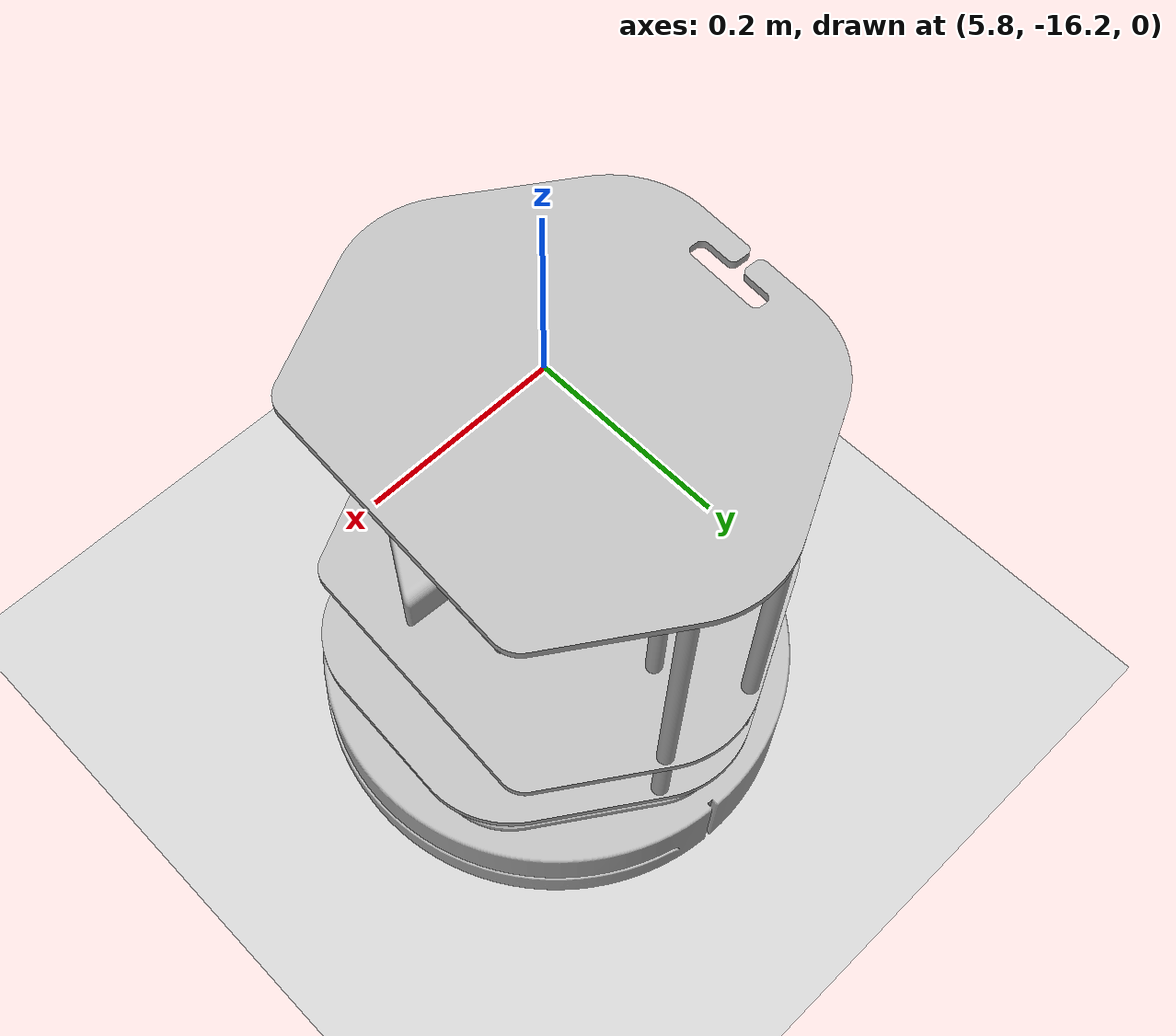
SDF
<sdf version="1.4">
 <world name="default">
  <model name="ground_plane">
   <static>1</static>
   <link name="link">
    <collision name="collision">
     <geometry><plane><normal>0 0 1</normal><size>100 100</size></plane></geometry>
     <surface><friction><ode><mu>100</mu><mu2>50</mu2></ode></friction></surface>
    </collision>
    <visual name="visual">
     <cast_shadows>0</cast_shadows>
     <geometry><plane><normal>0 0 1</normal><size>100 100</size></plane></geometry>
     <material>
      <script><uri>file://media/materials/scripts/gazebo.material</uri><name>Gazebo/Grey</name></script>
     </material>
    </visual>
    <velocity_decay><linear>0</linear><angular>0</angular></velocity_decay>
   </link>
  </model>
  <light name="sun" type="directional">
   <pose>0 0 10 0 -0 0</pose>
   <diffuse>0.8 0.8 0.8 1</diffuse>
   <specular>0.2 0.2 0.2 1</specular>
   <attenuation>
    <range>1000</range>
    <constant>0.9</constant>
    <linear>0.01</linear>
    <quadratic>0.001</quadratic>
   </attenuation>
   <direction>-0.5 0.1 -0.9</direction>
  </light>
  <physics type="ode">
   <max_step_size>0.01</max_step_size>
   <real_time_factor>1</real_time_factor>
   <real_time_update_rate>100</real_time_update_rate>
   <gravity>0 0 -9.8</gravity>
  </physics>
  <scene><ambient>0.4 0.4 0.4 1</ambient><background>0.7 0.7 0.7 1</background><shadows>1</shadows></scene>
  <model name="mobile_base">
   <link name="base_footprint">
    <inertial>
     <pose>0.00976386 2.50777e-05 0.0149209 0 -0 0</pose>
     <mass>2.47232</mass>
     <inertia>
      <ixx>0.0578467</ixx>
      <ixy>-2.89847e-06</ixy>
      <ixz>0.000126659</ixz>
      <iyy>0.0578569</iyy>
      <iyz>-9.59705e-07</iyz>
      <izz>0.0719205</izz>
     </inertia>
    </inertial>
    <collision name="base_footprint_collision_base_link">
     <pose>0 0 0.06969 0 -0 0</pose>
     <geometry><cylinder><length>0.10938</length><radius>0.178</radius></cylinder></geometry>
     <surface><friction><ode><mu>0.3</mu><mu2>0.3</mu2></ode></friction></surface>
    </collision>
    <collision name="base_footprint_collision_camera_link">
     <pose>-0.0156 0 0.2812 0 -0 0</pose>
     <geometry><box><size>0.07271 0.27794 0.073</size></box></geometry>
    </collision>
    <collision name="base_footprint_collision_caster_back_link">
     <pose>-0.135 0 0.0192 -1.5708 0 0</pose>
     <geometry><cylinder><length>0.0176</length><radius>0.017</radius></cylinder></geometry>
     <surface>
      <contact><ode><kp>1e+06</kp><kd>100</kd><max_vel>1</max_vel><min_depth>0.001</min_depth></ode></contact>
      <friction><ode><mu>0</mu><mu2>0</mu2></ode></friction>
     </surface>
    </collision>
    <collision name="base_footprint_collision_caster_front_link">
     <pose>0.115 0 0.0172 -1.5708 0 0</pose>
     <geometry><cylinder><length>0.0176</length><radius>0.017</radius></cylinder></geometry>
     <surface>
      <contact><ode><kp>1e+06</kp><kd>100</kd><max_vel>1</max_vel><min_depth>0.001</min_depth></ode></contact>
      <friction><ode><mu>0</mu><mu2>0</mu2></ode></friction>
     </surface>
    </collision>
    <collision name="base_footprint_collision_hokuyo_laser_link">
     <pose>0.048 0 0.2326 0 -0 0</pose>
     <geometry><box><size>0.1 0.1 0.1</size></box></geometry>
    </collision>
    <collision name="base_footprint_collision_plate_bottom_link">
     <pose>0 0 0.1408 0 -0 0</pose>
     <geometry><cylinder><length>0.006</length><radius>0.17</radius></cylinder></geometry>
    </collision>
    <collision name="base_footprint_collision_plate_middle_link">
     <pose>0 0 0.1976 0 -0 0</pose>
     <geometry><cylinder><length>0.006</length><radius>0.17</radius></cylinder></geometry>
    </collision>
    <collision name="base_footprint_collision_plate_top_link">
     <pose>0 0 0.4068 0 -0 0</pose>
     <geometry><cylinder><length>0.006</length><radius>0.17</radius></cylinder></geometry>
    </collision>
    <collision name="base_footprint_collision_pole_bottom_0_link">
     <pose>0.12 0.082 0.113 0 -0 0</pose>
     <geometry><cylinder><length>0.0492</length><radius>0.006</radius></cylinder></geometry>
    </collision>
    <collision name="base_footprint_collision_pole_bottom_1_link">
     <pose>0.055 0.12 0.113 0 -0 0</pose>
     <geometry><cylinder><length>0.0492</length><radius>0.006</radius></cylinder></geometry>
    </collision>
    <collision name="base_footprint_collision_pole_bottom_2_link">
     <pose>-0.055 0.12 0.113 0 -0 0</pose>
     <geometry><cylinder><length>0.0492</length><radius>0.006</radius></cylinder></geometry>
    </collision>
    <collision name="base_footprint_collision_pole_bottom_3_link">
     <pose>0.12 -0.082 0.113 0 -0 0</pose>
     <geometry><cylinder><length>0.0492</length><radius>0.006</radius></cylinder></geometry>
    </collision>
    <collision name="base_footprint_collision_pole_bottom_4_link">
     <pose>0.055 -0.12 0.113 0 -0 0</pose>
     <geometry><cylinder><length>0.0492</length><radius>0.006</radius></cylinder></geometry>
    </collision>
    <collision name="base_footprint_collision_pole_bottom_5_link">
     <pose>-0.055 -0.12 0.113 0 -0 0</pose>
     <geometry><cylinder><length>0.0492</length><radius>0.006</radius></cylinder></geometry>
    </collision>
    <collision name="base_footprint_collision_pole_kinect_0_link">
     <pose>0 0.098 0.2474 0 -0 0</pose>
     <geometry><cylinder><length>0.0936</length><radius>0.006</radius></cylinder></geometry>
    </collision>
    <collision name="base_footprint_collision_pole_kinect_1_link">
     <pose>0 -0.098 0.2474 0 -0 0</pose>
     <geometry><cylinder><length>0.0936</length><radius>0.006</radius></cylinder></geometry>
    </collision>
    <collision name="base_footprint_collision_pole_middle_0_link">
     <pose>0.0381 0.1505 0.1742 0 -0 0</pose>
     <geometry><cylinder><length>0.0608</length><radius>0.006</radius></cylinder></geometry>
    </collision>
    <collision name="base_footprint_collision_pole_middle_1_link">
     <pose>0.0381 -0.1505 0.1742 0 -0 0</pose>
     <geometry><cylinder><length>0.0608</length><radius>0.006</radius></cylinder></geometry>
    </collision>
    <collision name="base_footprint_collision_pole_middle_2_link">
     <pose>-0.0381 0.1505 0.1742 0 -0 0</pose>
     <geometry><cylinder><length>0.0608</length><radius>0.006</radius></cylinder></geometry>
    </collision>
    <collision name="base_footprint_collision_pole_middle_3_link">
     <pose>-0.0381 -0.1505 0.1742 0 -0 0</pose>
     <geometry><cylinder><length>0.0608</length><radius>0.006</radius></cylinder></geometry>
    </collision>
    <collision name="base_footprint_collision_pole_top_0_link">
     <pose>0.0381 0.1505 0.3022 0 -0 0</pose>
     <geometry><cylinder><length>0.2032</length><radius>0.006</radius></cylinder></geometry>
    </collision>
    <collision name="base_footprint_collision_pole_top_1_link">
     <pose>0.0381 -0.1505 0.3022 0 -0 0</pose>
     <geometry><cylinder><length>0.2032</length><radius>0.006</radius></cylinder></geometry>
    </collision>
    <collision name="base_footprint_collision_pole_top_2_link">
     <pose>-0.0381 0.1505 0.3022 0 -0 0</pose>
     <geometry><cylinder><length>0.2032</length><radius>0.006</radius></cylinder></geometry>
    </collision>
    <collision name="base_footprint_collision_pole_top_3_link">
     <pose>-0.0381 -0.1505 0.3022 0 -0 0</pose>
     <geometry><cylinder><length>0.2032</length><radius>0.006</radius></cylinder></geometry>
    </collision>
    <visual name="base_footprint_visual_base_link">
     <pose>0.001 0 0.06219 0 -0 0</pose>
     <geometry>
      <mesh><scale>1 1 1</scale><uri>/opt/ros/hydro/share/kobuki_description/meshes/main_body.dae</uri></mesh>
     </geometry>
    </visual>
    <visual name="base_footprint_visual_camera_link">
     <pose>-0.0156 0 0.2812 0 -0 1.5708</pose>
     <geometry>
      <mesh>
       <scale>1 1 1</scale>
       <uri>/home/koenlek/hydro_catkin/src/semantic_turtle_meta/st_description/meshes/sensors/kinect.dae</uri>
      </mesh>
     </geometry>
    </visual>
    <visual name="base_footprint_visual_hokuyo_laser_link">
     <pose>0.048 0 0.2326 0 -0 0</pose>
     <geometry>
      <mesh>
       <scale>1 1 1</scale>
       <uri>/home/koenlek/hydro_catkin/src/semantic_turtle_meta/st_description/meshes/sensors/hokuyo.dae</uri>
      </mesh>
     </geometry>
    </visual>
    <visual name="base_footprint_visual_plate_bottom_link">
     <pose>0.02364 0 0.1408 0 -0 0</pose>
     <geometry>
      <mesh>
       <scale>1 1 1</scale>
       <uri>/home/koenlek/hydro_catkin/src/semantic_turtle_meta/st_description/meshes/stacks/hexagons/plate_bottom.dae</uri>
      </mesh>
     </geometry>
    </visual>
    <visual name="base_footprint_visual_plate_middle_link">
     <pose>-0.01364 0 0.1976 0 -0 0</pose>
     <geometry>
      <mesh>
       <scale>1 1 1</scale>
       <uri>/home/koenlek/hydro_catkin/src/semantic_turtle_meta/st_description/meshes/stacks/hexagons/plate_middle.dae</uri>
      </mesh>
     </geometry>
    </visual>
    <visual name="base_footprint_visual_plate_top_link">
     <pose>-0.01364 0 0.4068 0 -0 0</pose>
     <geometry>
      <mesh>
       <scale>1 1 1</scale>
       <uri>/home/koenlek/hydro_catkin/src/semantic_turtle_meta/st_description/meshes/stacks/hexagons/plate_top.dae</uri>
      </mesh>
     </geometry>
    </visual>
    <visual name="base_footprint_visual_pole_bottom_0_link">
     <pose>0.12 0.082 0.113 0 -0 0</pose>
     <geometry>
      <mesh>
       <scale>1 1 1</scale>
       <uri>/home/koenlek/hydro_catkin/src/semantic_turtle_meta/st_description/meshes/stacks/hexagons/pole_bottom.dae</uri>
      </mesh>
     </geometry>
    </visual>
    <visual name="base_footprint_visual_pole_bottom_1_link">
     <pose>0.055 0.12 0.113 0 -0 0</pose>
     <geometry>
      <mesh>
       <scale>1 1 1</scale>
       <uri>/home/koenlek/hydro_catkin/src/semantic_turtle_meta/st_description/meshes/stacks/hexagons/pole_bottom.dae</uri>
      </mesh>
     </geometry>
    </visual>
    <visual name="base_footprint_visual_pole_bottom_2_link">
     <pose>-0.055 0.12 0.113 0 -0 0</pose>
     <geometry>
      <mesh>
       <scale>1 1 1</scale>
       <uri>/home/koenlek/hydro_catkin/src/semantic_turtle_meta/st_description/meshes/stacks/hexagons/pole_bottom.dae</uri>
      </mesh>
     </geometry>
    </visual>
    <visual name="base_footprint_visual_pole_bottom_3_link">
     <pose>0.12 -0.082 0.113 0 -0 0</pose>
     <geometry>
      <mesh>
       <scale>1 1 1</scale>
       <uri>/home/koenlek/hydro_catkin/src/semantic_turtle_meta/st_description/meshes/stacks/hexagons/pole_bottom.dae</uri>
      </mesh>
     </geometry>
    </visual>
    <visual name="base_footprint_visual_pole_bottom_4_link">
     <pose>0.055 -0.12 0.113 0 -0 0</pose>
     <geometry>
      <mesh>
       <scale>1 1 1</scale>
       <uri>/home/koenlek/hydro_catkin/src/semantic_turtle_meta/st_description/meshes/stacks/hexagons/pole_bottom.dae</uri>
      </mesh>
     </geometry>
    </visual>
    <visual name="base_footprint_visual_pole_bottom_5_link">
     <pose>-0.055 -0.12 0.113 0 -0 0</pose>
     <geometry>
      <mesh>
       <scale>1 1 1</scale>
       <uri>/home/koenlek/hydro_catkin/src/semantic_turtle_meta/st_description/meshes/stacks/hexagons/pole_bottom.dae</uri>
      </mesh>
     </geometry>
    </visual>
    <visual name="base_footprint_visual_pole_kinect_0_link">
     <pose>0 0.098 0.2474 0 -0 0</pose>
     <geometry>
      <mesh>
       <scale>1 1 1</scale>
       <uri>/home/koenlek/hydro_catkin/src/semantic_turtle_meta/st_description/meshes/stacks/hexagons/pole_kinect.dae</uri>
      </mesh>
     </geometry>
    </visual>
    <visual name="base_footprint_visual_pole_kinect_1_link">
     <pose>0 -0.098 0.2474 0 -0 0</pose>
     <geometry>
      <mesh>
       <scale>1 1 1</scale>
       <uri>/home/koenlek/hydro_catkin/src/semantic_turtle_meta/st_description/meshes/stacks/hexagons/pole_kinect.dae</uri>
      </mesh>
     </geometry>
    </visual>
    <visual name="base_footprint_visual_pole_middle_0_link">
     <pose>0.0381 0.1505 0.1742 3.14159 -2.06823e-13 3.14159</pose>
     <geometry>
      <mesh>
       <scale>1 1 1</scale>
       <uri>/home/koenlek/hydro_catkin/src/semantic_turtle_meta/st_description/meshes/stacks/hexagons/pole_middle.dae</uri>
      </mesh>
     </geometry>
    </visual>
    <visual name="base_footprint_visual_pole_middle_1_link">
     <pose>0.0381 -0.1505 0.1742 3.14159 -2.06823e-13 3.14159</pose>
     <geometry>
      <mesh>
       <scale>1 1 1</scale>
       <uri>/home/koenlek/hydro_catkin/src/semantic_turtle_meta/st_description/meshes/stacks/hexagons/pole_middle.dae</uri>
      </mesh>
     </geometry>
    </visual>
    <visual name="base_footprint_visual_pole_middle_2_link">
     <pose>-0.0381 0.1505 0.1742 3.14159 -2.06823e-13 3.14159</pose>
     <geometry>
      <mesh>
       <scale>1 1 1</scale>
       <uri>/home/koenlek/hydro_catkin/src/semantic_turtle_meta/st_description/meshes/stacks/hexagons/pole_middle.dae</uri>
      </mesh>
     </geometry>
    </visual>
    <visual name="base_footprint_visual_pole_middle_3_link">
     <pose>-0.0381 -0.1505 0.1742 3.14159 -2.06823e-13 3.14159</pose>
     <geometry>
      <mesh>
       <scale>1 1 1</scale>
       <uri>/home/koenlek/hydro_catkin/src/semantic_turtle_meta/st_description/meshes/stacks/hexagons/pole_middle.dae</uri>
      </mesh>
     </geometry>
    </visual>
    <visual name="base_footprint_visual_pole_top_0_link">
     <pose>0.0381 0.1505 0.3022 0 -0 0</pose>
     <geometry>
      <mesh>
       <scale>1 1 1</scale>
       <uri>/home/koenlek/hydro_catkin/src/semantic_turtle_meta/st_description/meshes/stacks/hexagons/pole_top.dae</uri>
      </mesh>
     </geometry>
    </visual>
    <visual name="base_footprint_visual_pole_top_1_link">
     <pose>0.0381 -0.1505 0.3022 0 -0 0</pose>
     <geometry>
      <mesh>
       <scale>1 1 1</scale>
       <uri>/home/koenlek/hydro_catkin/src/semantic_turtle_meta/st_description/meshes/stacks/hexagons/pole_top.dae</uri>
      </mesh>
     </geometry>
    </visual>
    <visual name="base_footprint_visual_pole_top_2_link">
     <pose>-0.0381 0.1505 0.3022 0 -0 0</pose>
     <geometry>
      <mesh>
       <scale>1 1 1</scale>
       <uri>/home/koenlek/hydro_catkin/src/semantic_turtle_meta/st_description/meshes/stacks/hexagons/pole_top.dae</uri>
      </mesh>
     </geometry>
    </visual>
    <visual name="base_footprint_visual_pole_top_3_link">
     <pose>-0.0381 -0.1505 0.3022 0 -0 0</pose>
     <geometry>
      <mesh>
       <scale>1 1 1</scale>
       <uri>/home/koenlek/hydro_catkin/src/semantic_turtle_meta/st_description/meshes/stacks/hexagons/pole_top.dae</uri>
      </mesh>
     </geometry>
    </visual>
    <velocity_decay><linear>0</linear><angular>0</angular></velocity_decay>
    <sensor name="bumpers" type="contact">
     <always_on>1</always_on>
     <update_rate>50</update_rate>
     <visualize>1</visualize>
     <contact><collision>base_footprint_collision_base_link</collision><topic>__default_topic__</topic></contact>
     <pose>0 0 0.0102 0 -0 0</pose>
    </sensor>
    <velocity_decay><linear>0</linear><angular>0</angular></velocity_decay>
    <velocity_decay><linear>0</linear><angular>0</angular></velocity_decay>
    <velocity_decay><linear>0</linear><angular>0</angular></velocity_decay>
    <sensor name="cliff_sensor_front" type="ray">
     <always_on>1</always_on>
     <update_rate>50</update_rate>
     <visualize>1</visualize>
     <ray>
      <scan>
       <horizontal>
        <samples>50</samples>
        <resolution>1</resolution>
        <min_angle>-0.0436</min_angle>
        <max_angle>0.0436</max_angle>
       </horizontal>
      </scan>
      <range><min>0.01</min><max>0.15</max><resolution>1</resolution></range>
     </ray>
     <pose>0.156 0 0.0316 3.14159 1.57079 3.14159</pose>
    </sensor>
    <velocity_decay><linear>0</linear><angular>0</angular></velocity_decay>
    <sensor name="cliff_sensor_left" type="ray">
     <always_on>1</always_on>
     <update_rate>50</update_rate>
     <visualize>1</visualize>
     <ray>
      <scan>
       <horizontal>
        <samples>50</samples>
        <resolution>1</resolution>
        <min_angle>-0.0436</min_angle>
        <max_angle>0.0436</max_angle>
       </horizontal>
      </scan>
      <range><min>0.01</min><max>0.15</max><resolution>1</resolution></range>
     </ray>
     <pose>0.08734 0.13601 0.0316 3.14159 1.57079 3.14159</pose>
    </sensor>
    <velocity_decay><linear>0</linear><angular>0</angular></velocity_decay>
    <sensor name="cliff_sensor_right" type="ray">
     <always_on>1</always_on>
     <update_rate>50</update_rate>
     <visualize>1</visualize>
     <ray>
      <scan>
       <horizontal>
        <samples>50</samples>
        <resolution>1</resolution>
        <min_angle>-0.0436</min_angle>
        <max_angle>0.0436</max_angle>
       </horizontal>
      </scan>
      <range><min>0.01</min><max>0.15</max><resolution>1</resolution></range>
     </ray>
     <pose>0.085 -0.13601 0.0316 3.14159 1.57079 3.14159</pose>
    </sensor>
    <velocity_decay><linear>0</linear><angular>0</angular></velocity_decay>
    <sensor name="imu" type="imu">
     <always_on>1</always_on>
     <update_rate>50</update_rate>
     <visualize>0</visualize>
     <imu>
      <noise>
       <type>gaussian</type>
       <rate><mean>0</mean><stddev>1.96e-06</stddev><bias_mean>0</bias_mean><bias_stddev>0</bias_stddev></rate>
       <accel><mean>0</mean><stddev>0.017</stddev><bias_mean>0.1</bias_mean><bias_stddev>0.001</bias_stddev></accel>
      </noise>
     </imu>
     <pose>0.056 0.062 0.0304 0 -0 0</pose>
    </sensor>
    <velocity_decay><linear>0</linear><angular>0</angular></velocity_decay>
    <sensor name="head_hokuyo_sensor" type="gpu_ray">
     <visualize>1</visualize>
     <update_rate>40</update_rate>
     <ray>
      <scan>
       <horizontal>
        <samples>720</samples>
        <resolution>1</resolution>
        <min_angle>-1.5708</min_angle>
        <max_angle>1.5708</max_angle>
       </horizontal>
      </scan>
      <range><min>0.02</min><max>5.6</max><resolution>0.01</resolution></range>
      <noise><type>gaussian</type><mean>0</mean><stddev>0.01</stddev></noise>
     </ray>
     <plugin name="gazebo_ros_head_hokuyo_controller" filename="libgazebo_ros_gpu_laser.so">
      <topicName>/scan_hokuyo</topicName>
      <frameName>hokuyo_laser_link</frameName>
      <robotNamespace>/</robotNamespace>
     </plugin>
     <pose>0.048 0 0.2606 0 -0 0</pose>
    </sensor>
   </link>
   <link name="wheel_left_link">
    <pose>0 0.115 0.0352 -1.5708 0 0</pose>
    <inertial>
     <mass>0.01</mass>
     <inertia><ixx>0.001</ixx><ixy>0</ixy><ixz>0</ixz><iyy>0.001</iyy><iyz>0</iyz><izz>0.001</izz></inertia>
    </inertial>
    <collision name="wheel_left_link_collision">
     <geometry><cylinder><length>0.0206</length><radius>0.0352</radius></cylinder></geometry>
     <surface>
      <contact><ode><kp>1e+06</kp><kd>100</kd><max_vel>1</max_vel><min_depth>0.001</min_depth></ode></contact>
      <friction><ode><mu>1</mu><mu2>1</mu2></ode></friction>
     </surface>
    </collision>
    <visual name="wheel_left_link_visual">
     <geometry>
      <mesh><scale>1 1 1</scale><uri>/opt/ros/hydro/share/kobuki_description/meshes/wheel.dae</uri></mesh>
     </geometry>
    </visual>
    <velocity_decay><linear>0</linear><angular>0</angular></velocity_decay>
   </link>
   <joint name="wheel_left_joint" type="revolute">
    <child>wheel_left_link</child>
    <parent>base_footprint</parent>
    <axis><xyz>0 1 0</xyz><limit><lower>-1e+16</lower><upper>1e+16</upper></limit></axis>
   </joint>
   <link name="wheel_right_link">
    <pose>0 -0.115 0.0352 -1.5708 0 0</pose>
    <inertial>
     <mass>0.01</mass>
     <inertia><ixx>0.001</ixx><ixy>0</ixy><ixz>0</ixz><iyy>0.001</iyy><iyz>0</iyz><izz>0.001</izz></inertia>
    </inertial>
    <collision name="wheel_right_link_collision">
     <geometry><cylinder><length>0.0206</length><radius>0.035</radius></cylinder></geometry>
     <surface>
      <contact><ode><kp>1e+06</kp><kd>100</kd><max_vel>1</max_vel><min_depth>0.001</min_depth></ode></contact>
      <friction><ode><mu>1</mu><mu2>1</mu2></ode></friction>
     </surface>
    </collision>
    <visual name="wheel_right_link_visual">
     <geometry>
      <mesh><scale>1 1 1</scale><uri>/opt/ros/hydro/share/kobuki_description/meshes/wheel.dae</uri></mesh>
     </geometry>
    </visual>
    <velocity_decay><linear>0</linear><angular>0</angular></velocity_decay>
   </link>
   <joint name="wheel_right_joint" type="revolute">
    <child>wheel_right_link</child>
    <parent>base_footprint</parent>
    <axis><xyz>0 1 0</xyz><limit><lower>-1e+16</lower><upper>1e+16</upper></limit></axis>
   </joint>
   <static>0</static>
   <plugin name="kobuki_controller" filename="libgazebo_ros_kobuki.so">
    <publish_tf>1</publish_tf>
    <left_wheel_joint_name>wheel_left_joint</left_wheel_joint_name>
    <right_wheel_joint_name>wheel_right_joint</right_wheel_joint_name>
    <wheel_separation>.230</wheel_separation>
    <wheel_diameter>0.070</wheel_diameter>
    <torque>1.0</torque>
    <velocity_command_timeout>0.6</velocity_command_timeout>
    <cliff_sensor_left_name>cliff_sensor_left</cliff_sensor_left_name>
    <cliff_sensor_center_name>cliff_sensor_front</cliff_sensor_center_name>
    <cliff_sensor_right_name>cliff_sensor_right</cliff_sensor_right_name>
    <cliff_detection_threshold>0.04</cliff_detection_threshold>
    <bumper_name>bumpers</bumper_name>
    <imu_name>imu</imu_name>
    <robotNamespace>/</robotNamespace>
   </plugin>
   <pose>6.00736 -15.9721 -0.001125 4.9e-05 -0.007993 -0.058092</pose>
  </model>
 </world>
</sdf>
